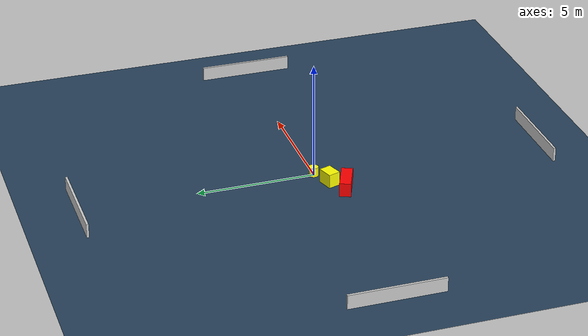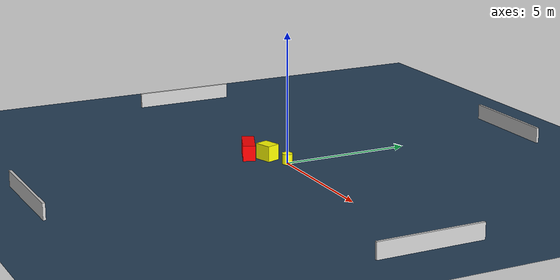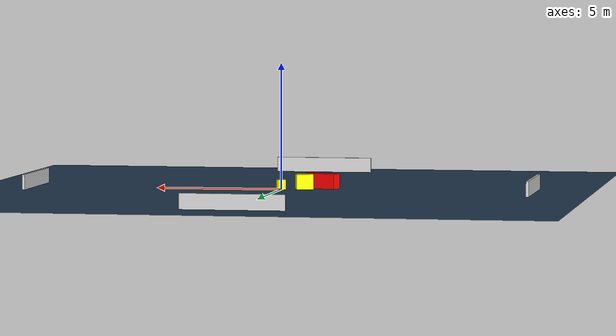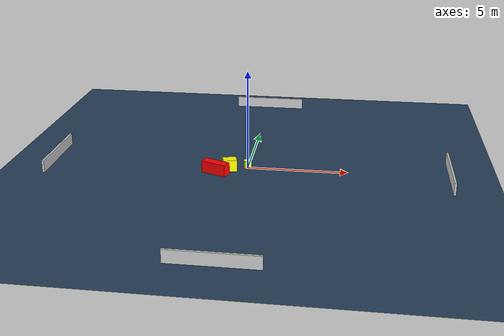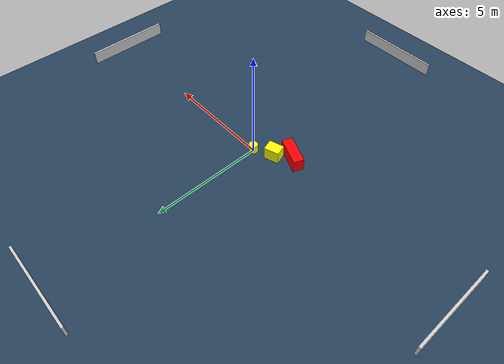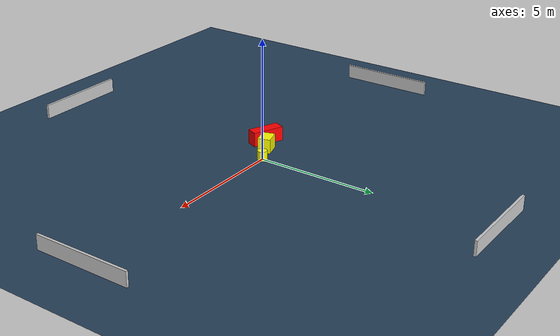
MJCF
<?xml version="1.0" ?>
<mujoco model="generated_environment">
  <option timestep="0.01" integrator="RK4" cone="elliptic"/>
  <default>
    <geom density="1"/>
  </default>
  <asset>
    <texture builtin="gradient" height="3072" name="skybox" rgb1="0.3 0.5 0.7" rgb2="0 0 0" type="skybox" width="512"/>
    <texture builtin="checker" height="300" name="groundplane" rgb1="0.2 0.3 0.4" rgb2="0.1 0.2 0.3" type="2d" width="300"/>
    <material name="groundplane" reflectance="0.2" texrepeat="5 5" texture="groundplane"/>
  </asset>
  <worldbody>
    <light dir="0 0 -1" directional="true" pos="0 0 1.5"/>
    <geom condim="3" friction="0.5 0.005 0.001" material="groundplane" name="floor" pos="0 0 0" size="0 0 0.05" type="plane"/>
    <body name="walls">
      <geom name="wall_1" condim="4" pos="-10.0 0.0 0.3" rgba="0.800000011920929 0.800000011920929 0.800000011920929 1.0" size="0.05 2.0 0.3" type="box"/>
      <geom name="wall_2" condim="4" pos="10.0 0.0 0.3" rgba="0.800000011920929 0.800000011920929 0.800000011920929 1.0" size="0.05 2.0 0.3" type="box"/>
      <geom name="wall_3" condim="4" pos="0.0 -10.0 0.3" rgba="0.800000011920929 0.800000011920929 0.800000011920929 1.0" size="2.0 0.05 0.3" type="box"/>
      <geom name="wall_4" condim="4" pos="0.0 10.0 0.3" rgba="0.800000011920929 0.800000011920929 0.800000011920929 1.0" size="2.0 0.05 0.3" type="box"/>
    </body>
    <body name="robot">
      <joint name="joint_x" type="slide" pos="0 0 0" axis="1 0 0"/>
      <joint name="joint_y" type="slide" pos="0 0 0" axis="0 1 0"/>
      <geom name="robot" type="cylinder" pos="0.0 0.0 0.2" size="0.2 0.2 0.0" mass="5.0" friction="1.0 0.005 0.0001" condim="4" rgba="1.0 1.0 0.0 1.0"/>
    </body>
    <body name="obstacle_1_movable">
      <geom name="obstacle_1_movable" condim="4" pos="-0.8561970234779172 -0.41118399989251175 0.3" euler="0 0 107.79210038004162" friction="0.0 0.005 0.001" rgba="1.0 1.0 0.0 1.0" size="0.260262306252392 0.33828266094094284 0.3" type="box" mass="0.1"/>
      <joint type="free"/>
    </body>
    <body name="obstacle_2_static">
      <geom name="obstacle_2_static" condim="4" pos="-1.4965566559304713 -0.9059770315879679 0.3" euler="0 0 247.32582920467465" friction="0.0 0.005 0.001" rgba="1.0 0.0 0.0 1.0" size="0.2382643178577546 0.6688499784338631 0.3" type="box"/>
    </body>
  </worldbody>
  <actuator>
    <motor name="actuator_x" joint="joint_x" gear="1" ctrlrange="-1 1"/>
    <motor name="actuator_y" joint="joint_y" gear="1" ctrlrange="-1 1"/>
  </actuator>
</mujoco>
